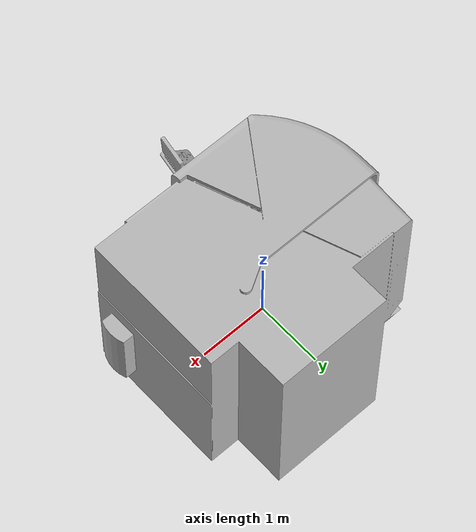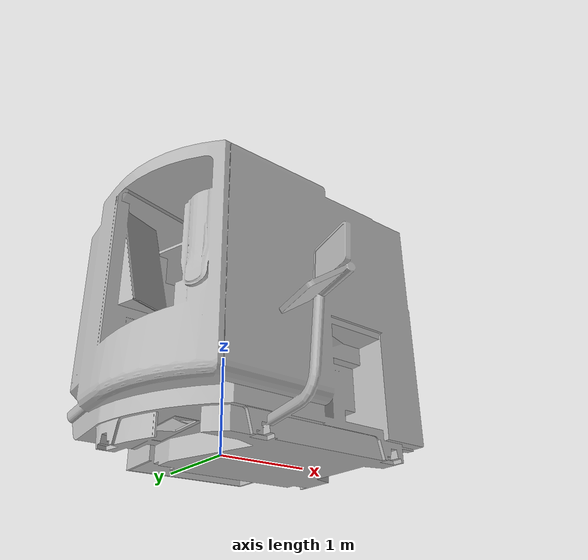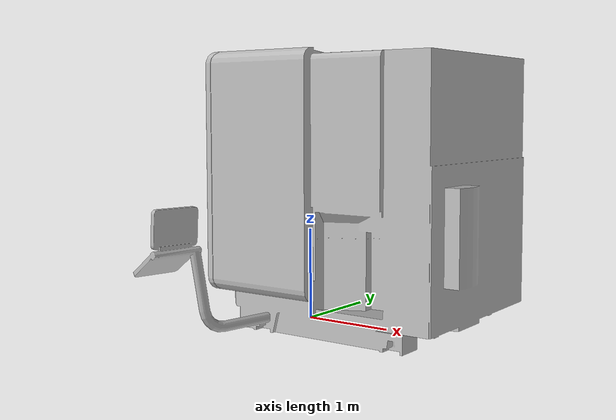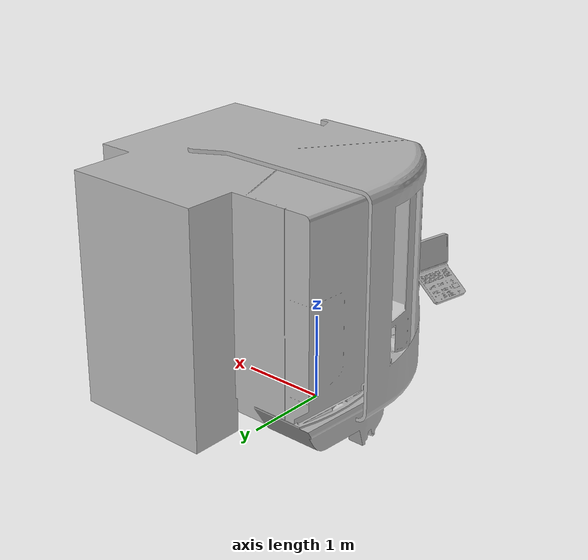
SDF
<?xml version="1.0" ?>
<sdf version="1.6">
  <model name="DMU80">
    <static>true</static>
    <link name="link">
      <visual name="visual">
        <geometry>
          <mesh>
            <uri>model://DMU80/meshes/DMU80.obj</uri>
          </mesh>
        </geometry>
      </visual>
      <collision name="collision">
        <geometry>
          <mesh>
            <uri>model://DMU80/meshes/DMU80.obj</uri>
          </mesh>
        </geometry>
      </collision>
    </link>
  </model>
</sdf>
